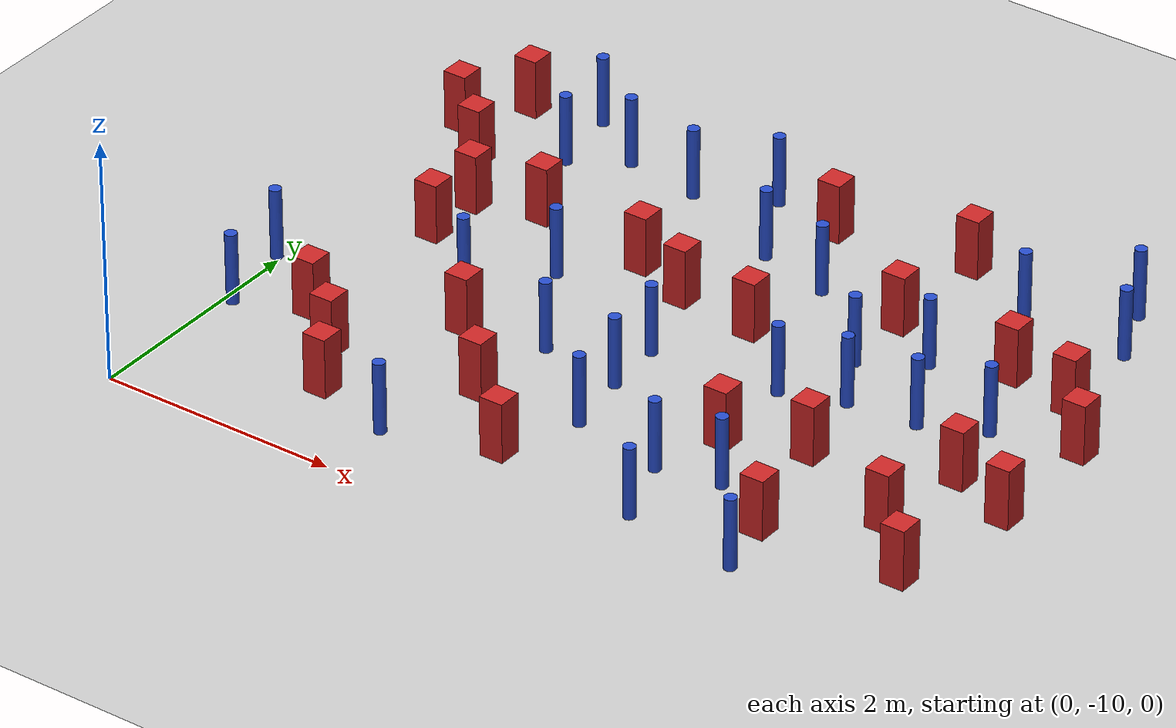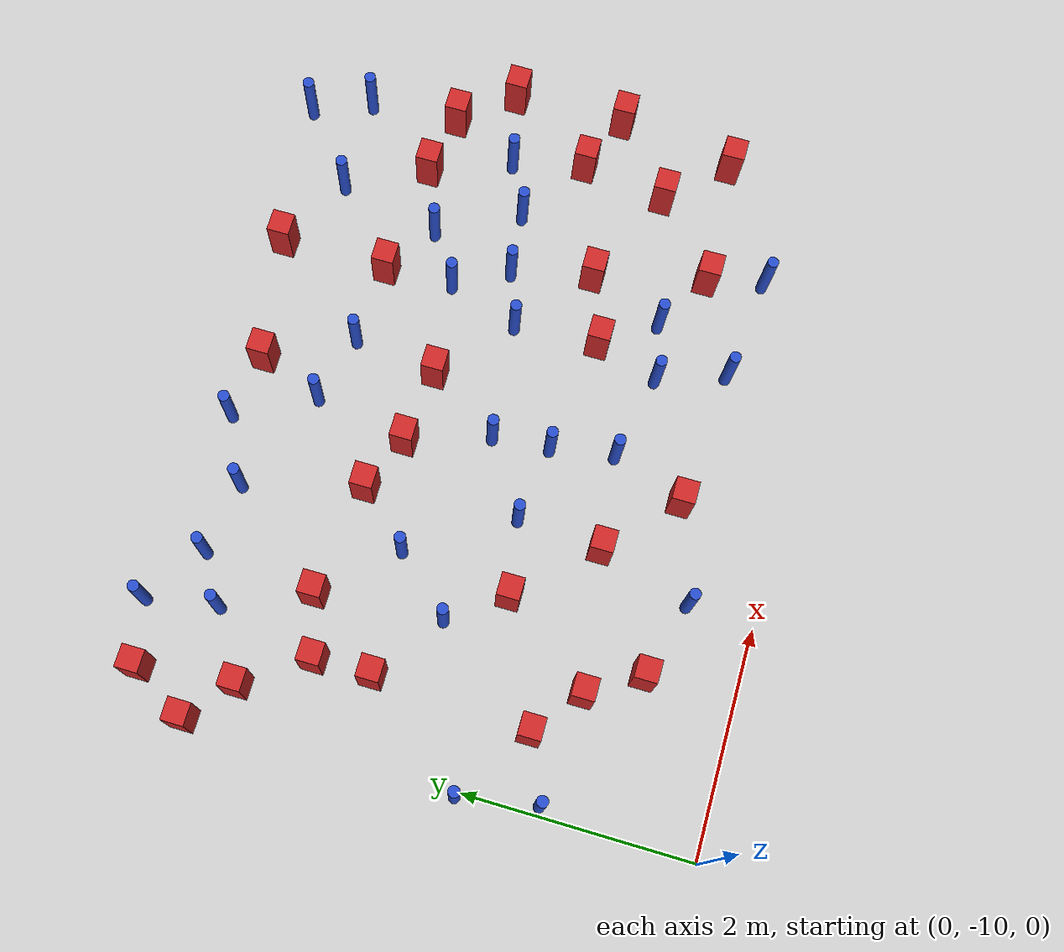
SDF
<sdf version="1.6">
 <world name="default">
  <model name="ground_plane">
   <static>1</static>
   <link name="link">
    <collision name="collision">
     <geometry><plane><normal>0 0 1</normal><size>100 100</size></plane></geometry>
     <surface><friction><ode><mu>100</mu><mu2>50</mu2></ode></friction></surface>
    </collision>
    <visual name="visual">
     <cast_shadows>0</cast_shadows>
     <geometry><plane><normal>0 0 1</normal><size>100 100</size></plane></geometry>
     <material>
      <ambient>1.0 1.0 1.0 1.0</ambient>
      <diffuse>0.8 0.8 0.8 1.0</diffuse>
      <specular>0.01 0.01 0.01 1.000000</specular>
     </material>
    </visual>
   </link>
  </model>
  <model name="square_post_obstacle0">
   <static>true</static>
   <pose>0.239393074724 -5.11633547202 1.91545236811e-07 -7.35059704564e-06 1.12565212e-07 2.39332434364e-05</pose>
   <link name="link">
    <pose>0 0 0.25 0 -0 0</pose>
    <inertial>
     <mass>100</mass>
     <inertia>
      <ixx>0.166667</ixx>
      <ixy>0</ixy>
      <ixz>0</ixz>
      <iyy>0.166667</iyy>
      <iyz>0</iyz>
      <izz>0.166667</izz>
     </inertia>
    </inertial>
    <collision name="collision"><geometry><box><size>.2 .2 .5</size></box></geometry></collision>
    <visual name="visual">
     <geometry><box><size>.2 .2 .5</size></box></geometry>
     <material>
      <script><name>Gazebo/Red</name><uri>file://media/materials/scripts/gazebo.material</uri></script>
     </material>
    </visual>
   </link>
  </model>
  <model name="square_post_obstacle14">
   <static>true</static>
   <pose>5.66452522465 -8.27704746896 1.91545236811e-07 -7.35059704564e-06 1.12565212e-07 2.39332434364e-05</pose>
   <link name="link">
    <pose>0 0 0.25 0 -0 0</pose>
    <inertial>
     <mass>100</mass>
     <inertia>
      <ixx>0.166667</ixx>
      <ixy>0</ixy>
      <ixz>0</ixz>
      <iyy>0.166667</iyy>
      <iyz>0</iyz>
      <izz>0.166667</izz>
     </inertia>
    </inertial>
    <collision name="collision"><geometry><box><size>.2 .2 .5</size></box></geometry></collision>
    <visual name="visual">
     <geometry><box><size>.2 .2 .5</size></box></geometry>
     <material>
      <script><name>Gazebo/Red</name><uri>file://media/materials/scripts/gazebo.material</uri></script>
     </material>
    </visual>
   </link>
  </model>
  <model name="square_post_obstacle16">
   <static>true</static>
   <pose>5.34431540036 -6.13683487316 1.91545236811e-07 -7.35059704564e-06 1.12565212e-07 2.39332434364e-05</pose>
   <link name="link">
    <pose>0 0 0.25 0 -0 0</pose>
    <inertial>
     <mass>100</mass>
     <inertia>
      <ixx>0.166667</ixx>
      <ixy>0</ixy>
      <ixz>0</ixz>
      <iyy>0.166667</iyy>
      <iyz>0</iyz>
      <izz>0.166667</izz>
     </inertia>
    </inertial>
    <collision name="collision"><geometry><box><size>.2 .2 .5</size></box></geometry></collision>
    <visual name="visual">
     <geometry><box><size>.2 .2 .5</size></box></geometry>
     <material>
      <script><name>Gazebo/Red</name><uri>file://media/materials/scripts/gazebo.material</uri></script>
     </material>
    </visual>
   </link>
  </model>
  <model name="square_post_obstacle20">
   <static>true</static>
   <pose>4.28876861676 -5.07236767864 1.91545236811e-07 -7.35059704564e-06 1.12565212e-07 2.39332434364e-05</pose>
   <link name="link">
    <pose>0 0 0.25 0 -0 0</pose>
    <inertial>
     <mass>100</mass>
     <inertia>
      <ixx>0.166667</ixx>
      <ixy>0</ixy>
      <ixz>0</ixz>
      <iyy>0.166667</iyy>
      <iyz>0</iyz>
      <izz>0.166667</izz>
     </inertia>
    </inertial>
    <collision name="collision"><geometry><box><size>.2 .2 .5</size></box></geometry></collision>
    <visual name="visual">
     <geometry><box><size>.2 .2 .5</size></box></geometry>
     <material>
      <script><name>Gazebo/Red</name><uri>file://media/materials/scripts/gazebo.material</uri></script>
     </material>
    </visual>
   </link>
  </model>
  <model name="square_post_obstacle23">
   <static>true</static>
   <pose>2.76238169437 -6.67858304899 1.91545236811e-07 -7.35059704564e-06 1.12565212e-07 2.39332434364e-05</pose>
   <link name="link">
    <pose>0 0 0.25 0 -0 0</pose>
    <inertial>
     <mass>100</mass>
     <inertia>
      <ixx>0.166667</ixx>
      <ixy>0</ixy>
      <ixz>0</ixz>
      <iyy>0.166667</iyy>
      <iyz>0</iyz>
      <izz>0.166667</izz>
     </inertia>
    </inertial>
    <collision name="collision"><geometry><box><size>.2 .2 .5</size></box></geometry></collision>
    <visual name="visual">
     <geometry><box><size>.2 .2 .5</size></box></geometry>
     <material>
      <script><name>Gazebo/Red</name><uri>file://media/materials/scripts/gazebo.material</uri></script>
     </material>
    </visual>
   </link>
  </model>
  <model name="square_post_obstacle26">
   <static>true</static>
   <pose>0.329745732735 -5.9619223979 1.91545236811e-07 -7.35059704564e-06 1.12565212e-07 2.39332434364e-05</pose>
   <link name="link">
    <pose>0 0 0.25 0 -0 0</pose>
    <inertial>
     <mass>100</mass>
     <inertia>
      <ixx>0.166667</ixx>
      <ixy>0</ixy>
      <ixz>0</ixz>
      <iyy>0.166667</iyy>
      <iyz>0</iyz>
      <izz>0.166667</izz>
     </inertia>
    </inertial>
    <collision name="collision"><geometry><box><size>.2 .2 .5</size></box></geometry></collision>
    <visual name="visual">
     <geometry><box><size>.2 .2 .5</size></box></geometry>
     <material>
      <script><name>Gazebo/Red</name><uri>file://media/materials/scripts/gazebo.material</uri></script>
     </material>
    </visual>
   </link>
  </model>
  <model name="square_post_obstacle37">
   <static>true</static>
   <pose>1.68894764603 -7.93559085688 1.91545236811e-07 -7.35059704564e-06 1.12565212e-07 2.39332434364e-05</pose>
   <link name="link">
    <pose>0 0 0.25 0 -0 0</pose>
    <inertial>
     <mass>100</mass>
     <inertia>
      <ixx>0.166667</ixx>
      <ixy>0</ixy>
      <ixz>0</ixz>
      <iyy>0.166667</iyy>
      <iyz>0</iyz>
      <izz>0.166667</izz>
     </inertia>
    </inertial>
    <collision name="collision"><geometry><box><size>.2 .2 .5</size></box></geometry></collision>
    <visual name="visual">
     <geometry><box><size>.2 .2 .5</size></box></geometry>
     <material>
      <script><name>Gazebo/Red</name><uri>file://media/materials/scripts/gazebo.material</uri></script>
     </material>
    </visual>
   </link>
  </model>
  <model name="square_post_obstacle39">
   <static>true</static>
   <pose>4.73304605116 -7.85816583785 1.91545236811e-07 -7.35059704564e-06 1.12565212e-07 2.39332434364e-05</pose>
   <link name="link">
    <pose>0 0 0.25 0 -0 0</pose>
    <inertial>
     <mass>100</mass>
     <inertia>
      <ixx>0.166667</ixx>
      <ixy>0</ixy>
      <ixz>0</ixz>
      <iyy>0.166667</iyy>
      <iyz>0</iyz>
      <izz>0.166667</izz>
     </inertia>
    </inertial>
    <collision name="collision"><geometry><box><size>.2 .2 .5</size></box></geometry></collision>
    <visual name="visual">
     <geometry><box><size>.2 .2 .5</size></box></geometry>
     <material>
      <script><name>Gazebo/Red</name><uri>file://media/materials/scripts/gazebo.material</uri></script>
     </material>
    </visual>
   </link>
  </model>
  <model name="pole_obstacle39">
   <static>true</static>
   <pose>2.92677198568 -5.82771786605 7.38925637345e-09 -8.47170692798e-08 1.24976765033e-08 -1.74513093019e-07</pose>
   <link name="link">
    <pose>0 0 0.3 0 -0 0</pose>
    <inertial>
     <mass>1</mass>
     <inertia><ixx>0.145833</ixx><ixy>0</ixy><ixz>0</ixz><iyy>0.145833</iyy><iyz>0</iyz><izz>0.125</izz></inertia>
    </inertial>
    <collision name="collision">
     <geometry><cylinder><radius>0.05</radius><length>.6</length></cylinder></geometry>
    </collision>
    <visual name="visual">
     <geometry><cylinder><radius>0.05</radius><length>.6</length></cylinder></geometry>
     <material>
      <script><name>Gazebo/Blue</name><uri>file://media/materials/scripts/gazebo.material</uri></script>
     </material>
    </visual>
   </link>
  </model>
  <model name="square_post_obstacle51">
   <static>true</static>
   <pose>0.717684950213 -7.01948713616 1.91545236811e-07 -7.35059704564e-06 1.12565212e-07 2.39332434364e-05</pose>
   <link name="link">
    <pose>0 0 0.25 0 -0 0</pose>
    <inertial>
     <mass>100</mass>
     <inertia>
      <ixx>0.166667</ixx>
      <ixy>0</ixy>
      <ixz>0</ixz>
      <iyy>0.166667</iyy>
      <iyz>0</iyz>
      <izz>0.166667</izz>
     </inertia>
    </inertial>
    <collision name="collision"><geometry><box><size>.2 .2 .5</size></box></geometry></collision>
    <visual name="visual">
     <geometry><box><size>.2 .2 .5</size></box></geometry>
     <material>
      <script><name>Gazebo/Red</name><uri>file://media/materials/scripts/gazebo.material</uri></script>
     </material>
    </visual>
   </link>
  </model>
  <model name="square_post_obstacle54">
   <static>true</static>
   <pose>4.98598468696 -8.85476415405 1.91545236811e-07 -7.35059704564e-06 1.12565212e-07 2.39332434364e-05</pose>
   <link name="link">
    <pose>0 0 0.25 0 -0 0</pose>
    <inertial>
     <mass>100</mass>
     <inertia>
      <ixx>0.166667</ixx>
      <ixy>0</ixy>
      <ixz>0</ixz>
      <iyy>0.166667</iyy>
      <iyz>0</iyz>
      <izz>0.166667</izz>
     </inertia>
    </inertial>
    <collision name="collision"><geometry><box><size>.2 .2 .5</size></box></geometry></collision>
    <visual name="visual">
     <geometry><box><size>.2 .2 .5</size></box></geometry>
     <material>
      <script><name>Gazebo/Red</name><uri>file://media/materials/scripts/gazebo.material</uri></script>
     </material>
    </visual>
   </link>
  </model>
  <model name="square_post_obstacle56">
   <static>true</static>
   <pose>0.635655862235 -8.41305819245 1.91545236811e-07 -7.35059704564e-06 1.12565212e-07 2.39332434364e-05</pose>
   <link name="link">
    <pose>0 0 0.25 0 -0 0</pose>
    <inertial>
     <mass>100</mass>
     <inertia>
      <ixx>0.166667</ixx>
      <ixy>0</ixy>
      <ixz>0</ixz>
      <iyy>0.166667</iyy>
      <iyz>0</iyz>
      <izz>0.166667</izz>
     </inertia>
    </inertial>
    <collision name="collision"><geometry><box><size>.2 .2 .5</size></box></geometry></collision>
    <visual name="visual">
     <geometry><box><size>.2 .2 .5</size></box></geometry>
     <material>
      <script><name>Gazebo/Red</name><uri>file://media/materials/scripts/gazebo.material</uri></script>
     </material>
    </visual>
   </link>
  </model>
  <model name="pole_obstacle54">
   <static>true</static>
   <pose>2.35396490443 -7.82283693971 7.38925637345e-09 -8.47170692798e-08 1.24976765033e-08 -1.74513093019e-07</pose>
   <link name="link">
    <pose>0 0 0.3 0 -0 0</pose>
    <inertial>
     <mass>1</mass>
     <inertia><ixx>0.145833</ixx><ixy>0</ixy><ixz>0</ixz><iyy>0.145833</iyy><iyz>0</iyz><izz>0.125</izz></inertia>
    </inertial>
    <collision name="collision">
     <geometry><cylinder><radius>0.05</radius><length>.6</length></cylinder></geometry>
    </collision>
    <visual name="visual">
     <geometry><cylinder><radius>0.05</radius><length>.6</length></cylinder></geometry>
     <material>
      <script><name>Gazebo/Blue</name><uri>file://media/materials/scripts/gazebo.material</uri></script>
     </material>
    </visual>
   </link>
  </model>
  <model name="pole_obstacle62">
   <static>true</static>
   <pose>2.56688256661 -5.14115055759 7.38925637345e-09 -8.47170692798e-08 1.24976765033e-08 -1.74513093019e-07</pose>
   <link name="link">
    <pose>0 0 0.3 0 -0 0</pose>
    <inertial>
     <mass>1</mass>
     <inertia><ixx>0.145833</ixx><ixy>0</ixy><ixz>0</ixz><iyy>0.145833</iyy><iyz>0</iyz><izz>0.125</izz></inertia>
    </inertial>
    <collision name="collision">
     <geometry><cylinder><radius>0.05</radius><length>.6</length></cylinder></geometry>
    </collision>
    <visual name="visual">
     <geometry><cylinder><radius>0.05</radius><length>.6</length></cylinder></geometry>
     <material>
      <script><name>Gazebo/Blue</name><uri>file://media/materials/scripts/gazebo.material</uri></script>
     </material>
    </visual>
   </link>
  </model>
  <model name="pole_obstacle74">
   <static>true</static>
   <pose>5.85127787623 -5.42313465242 7.38925637345e-09 -8.47170692796e-08 1.24976764786e-08 -1.74513093032e-07</pose>
   <link name="link">
    <pose>0 0 0.3 0 -0 0</pose>
    <inertial>
     <mass>1</mass>
     <inertia><ixx>0.145833</ixx><ixy>0</ixy><ixz>0</ixz><iyy>0.145833</iyy><iyz>0</iyz><izz>0.125</izz></inertia>
    </inertial>
    <collision name="collision">
     <geometry><cylinder><radius>0.05</radius><length>.6</length></cylinder></geometry>
    </collision>
    <visual name="visual">
     <geometry><cylinder><radius>0.05</radius><length>.6</length></cylinder></geometry>
     <material>
      <script><name>Gazebo/Blue</name><uri>file://media/materials/scripts/gazebo.material</uri></script>
     </material>
    </visual>
   </link>
  </model>
  <model name="pole_obstacle77">
   <static>true</static>
   <pose>4.13768257444 -9.24695120705 7.38925637345e-09 -8.471706928e-08 1.24976765081e-08 -1.74513093015e-07</pose>
   <link name="link">
    <pose>0 0 0.3 0 -0 0</pose>
    <inertial>
     <mass>1</mass>
     <inertia><ixx>0.145833</ixx><ixy>0</ixy><ixz>0</ixz><iyy>0.145833</iyy><iyz>0</iyz><izz>0.125</izz></inertia>
    </inertial>
    <collision name="collision">
     <geometry><cylinder><radius>0.05</radius><length>.6</length></cylinder></geometry>
    </collision>
    <visual name="visual">
     <geometry><cylinder><radius>0.05</radius><length>.6</length></cylinder></geometry>
     <material>
      <script><name>Gazebo/Blue</name><uri>file://media/materials/scripts/gazebo.material</uri></script>
     </material>
    </visual>
   </link>
  </model>
  <model name="square_post_obstacle79">
   <static>true</static>
   <pose>3.44021752838 -6.75589412791 1.91545236811e-07 -7.35059704564e-06 1.12565212e-07 2.39332434364e-05</pose>
   <link name="link">
    <pose>0 0 0.25 0 -0 0</pose>
    <inertial>
     <mass>100</mass>
     <inertia>
      <ixx>0.166667</ixx>
      <ixy>0</ixy>
      <ixz>0</ixz>
      <iyy>0.166667</iyy>
      <iyz>0</iyz>
      <izz>0.166667</izz>
     </inertia>
    </inertial>
    <collision name="collision"><geometry><box><size>.2 .2 .5</size></box></geometry></collision>
    <visual name="visual">
     <geometry><box><size>.2 .2 .5</size></box></geometry>
     <material>
      <script><name>Gazebo/Red</name><uri>file://media/materials/scripts/gazebo.material</uri></script>
     </material>
    </visual>
   </link>
  </model>
  <model name="pole_obstacle95">
   <static>true</static>
   <pose>0.799604997035 -4.96641036493 7.38925637345e-09 -8.471706928e-08 1.24976765086e-08 -1.74513093015e-07</pose>
   <link name="link">
    <pose>0 0 0.3 0 -0 0</pose>
    <inertial>
     <mass>1</mass>
     <inertia><ixx>0.145833</ixx><ixy>0</ixy><ixz>0</ixz><iyy>0.145833</iyy><iyz>0</iyz><izz>0.125</izz></inertia>
    </inertial>
    <collision name="collision">
     <geometry><cylinder><radius>0.05</radius><length>.6</length></cylinder></geometry>
    </collision>
    <visual name="visual">
     <geometry><cylinder><radius>0.05</radius><length>.6</length></cylinder></geometry>
     <material>
      <script><name>Gazebo/Blue</name><uri>file://media/materials/scripts/gazebo.material</uri></script>
     </material>
    </visual>
   </link>
  </model>
  <model name="square_post_obstacle84">
   <static>true</static>
   <pose>6.3213210823 -7.72801168453 1.91545236811e-07 -7.35059704564e-06 1.12565212e-07 2.39332434364e-05</pose>
   <link name="link">
    <pose>0 0 0.25 0 -0 0</pose>
    <inertial>
     <mass>100</mass>
     <inertia>
      <ixx>0.166667</ixx>
      <ixy>0</ixy>
      <ixz>0</ixz>
      <iyy>0.166667</iyy>
      <iyz>0</iyz>
      <izz>0.166667</izz>
     </inertia>
    </inertial>
    <collision name="collision"><geometry><box><size>.2 .2 .5</size></box></geometry></collision>
    <visual name="visual">
     <geometry><box><size>.2 .2 .5</size></box></geometry>
     <material>
      <script><name>Gazebo/Red</name><uri>file://media/materials/scripts/gazebo.material</uri></script>
     </material>
    </visual>
   </link>
  </model>
  <model name="pole_obstacle101">
   <static>true</static>
   <pose>1.32940897357 -5.3309616093 7.38925637345e-09 -8.47170692799e-08 1.24976765033e-08 -1.74513093018e-07</pose>
   <link name="link">
    <pose>0 0 0.3 0 -0 0</pose>
    <inertial>
     <mass>1</mass>
     <inertia><ixx>0.145833</ixx><ixy>0</ixy><ixz>0</ixz><iyy>0.145833</iyy><iyz>0</iyz><izz>0.125</izz></inertia>
    </inertial>
    <collision name="collision">
     <geometry><cylinder><radius>0.05</radius><length>.6</length></cylinder></geometry>
    </collision>
    <visual name="visual">
     <geometry><cylinder><radius>0.05</radius><length>.6</length></cylinder></geometry>
     <material>
      <script><name>Gazebo/Blue</name><uri>file://media/materials/scripts/gazebo.material</uri></script>
     </material>
    </visual>
   </link>
  </model>
  <model name="square_post_obstacle96">
   <static>true</static>
   <pose>6.30016649651 -6.71195299548 1.91545236811e-07 -7.35059704564e-06 1.12565212e-07 2.39332434364e-05</pose>
   <link name="link">
    <pose>0 0 0.25 0 -0 0</pose>
    <inertial>
     <mass>100</mass>
     <inertia>
      <ixx>0.166667</ixx>
      <ixy>0</ixy>
      <ixz>0</ixz>
      <iyy>0.166667</iyy>
      <iyz>0</iyz>
      <izz>0.166667</izz>
     </inertia>
    </inertial>
    <collision name="collision"><geometry><box><size>.2 .2 .5</size></box></geometry></collision>
    <visual name="visual">
     <geometry><box><size>.2 .2 .5</size></box></geometry>
     <material>
      <script><name>Gazebo/Red</name><uri>file://media/materials/scripts/gazebo.material</uri></script>
     </material>
    </visual>
   </link>
  </model>
  <model name="pole_obstacle109">
   <static>true</static>
   <pose>0.904961564796 -5.59777344753 7.38925637345e-09 -8.471706928e-08 1.24976765086e-08 -1.74513093015e-07</pose>
   <link name="link">
    <pose>0 0 0.3 0 -0 0</pose>
    <inertial>
     <mass>1</mass>
     <inertia><ixx>0.145833</ixx><ixy>0</ixy><ixz>0</ixz><iyy>0.145833</iyy><iyz>0</iyz><izz>0.125</izz></inertia>
    </inertial>
    <collision name="collision">
     <geometry><cylinder><radius>0.05</radius><length>.6</length></cylinder></geometry>
    </collision>
    <visual name="visual">
     <geometry><cylinder><radius>0.05</radius><length>.6</length></cylinder></geometry>
     <material>
      <script><name>Gazebo/Blue</name><uri>file://media/materials/scripts/gazebo.material</uri></script>
     </material>
    </visual>
   </link>
  </model>
  <model name="pole_obstacle110">
   <static>true</static>
   <pose>-0.0454354200356 -7.95750425219 7.38925637345e-09 -8.47170692798e-08 1.24976764949e-08 -1.74513093023e-07</pose>
   <link name="link">
    <pose>0 0 0.3 0 -0 0</pose>
    <inertial>
     <mass>1</mass>
     <inertia><ixx>0.145833</ixx><ixy>0</ixy><ixz>0</ixz><iyy>0.145833</iyy><iyz>0</iyz><izz>0.125</izz></inertia>
    </inertial>
    <collision name="collision">
     <geometry><cylinder><radius>0.05</radius><length>.6</length></cylinder></geometry>
    </collision>
    <visual name="visual">
     <geometry><cylinder><radius>0.05</radius><length>.6</length></cylinder></geometry>
     <material>
      <script><name>Gazebo/Blue</name><uri>file://media/materials/scripts/gazebo.material</uri></script>
     </material>
    </visual>
   </link>
  </model>
  <model name="pole_obstacle119">
   <static>true</static>
   <pose>1.32913389827 -7.45550906816 7.38925637345e-09 -8.47170692799e-08 1.24976765033e-08 -1.74513093018e-07</pose>
   <link name="link">
    <pose>0 0 0.3 0 -0 0</pose>
    <inertial>
     <mass>1</mass>
     <inertia><ixx>0.145833</ixx><ixy>0</ixy><ixz>0</ixz><iyy>0.145833</iyy><iyz>0</iyz><izz>0.125</izz></inertia>
    </inertial>
    <collision name="collision">
     <geometry><cylinder><radius>0.05</radius><length>.6</length></cylinder></geometry>
    </collision>
    <visual name="visual">
     <geometry><cylinder><radius>0.05</radius><length>.6</length></cylinder></geometry>
     <material>
      <script><name>Gazebo/Blue</name><uri>file://media/materials/scripts/gazebo.material</uri></script>
     </material>
    </visual>
   </link>
  </model>
  <model name="pole_obstacle124">
   <static>true</static>
   <pose>4.29735005299 -6.65630802097 7.38925637345e-09 -8.47170692796e-08 1.24976764786e-08 -1.74513093032e-07</pose>
   <link name="link">
    <pose>0 0 0.3 0 -0 0</pose>
    <inertial>
     <mass>1</mass>
     <inertia><ixx>0.145833</ixx><ixy>0</ixy><ixz>0</ixz><iyy>0.145833</iyy><iyz>0</iyz><izz>0.125</izz></inertia>
    </inertial>
    <collision name="collision">
     <geometry><cylinder><radius>0.05</radius><length>.6</length></cylinder></geometry>
    </collision>
    <visual name="visual">
     <geometry><cylinder><radius>0.05</radius><length>.6</length></cylinder></geometry>
     <material>
      <script><name>Gazebo/Blue</name><uri>file://media/materials/scripts/gazebo.material</uri></script>
     </material>
    </visual>
   </link>
  </model>
  <model name="pole_obstacle125">
   <static>true</static>
   <pose>4.06969225476 -7.3075442363 7.38925637345e-09 -8.47170692796e-08 1.24976764786e-08 -1.74513093032e-07</pose>
   <link name="link">
    <pose>0 0 0.3 0 -0 0</pose>
    <inertial>
     <mass>1</mass>
     <inertia><ixx>0.145833</ixx><ixy>0</ixy><ixz>0</ixz><iyy>0.145833</iyy><iyz>0</iyz><izz>0.125</izz></inertia>
    </inertial>
    <collision name="collision">
     <geometry><cylinder><radius>0.05</radius><length>.6</length></cylinder></geometry>
    </collision>
    <visual name="visual">
     <geometry><cylinder><radius>0.05</radius><length>.6</length></cylinder></geometry>
     <material>
      <script><name>Gazebo/Blue</name><uri>file://media/materials/scripts/gazebo.material</uri></script>
     </material>
    </visual>
   </link>
  </model>
  <model name="pole_obstacle127">
   <static>true</static>
   <pose>1.97741929509 -5.42981381144 7.38925637345e-09 -8.471706928e-08 1.24976765202e-08 -1.7451309301e-07</pose>
   <link name="link">
    <pose>0 0 0.3 0 -0 0</pose>
    <inertial>
     <mass>1</mass>
     <inertia><ixx>0.145833</ixx><ixy>0</ixy><ixz>0</ixz><iyy>0.145833</iyy><iyz>0</iyz><izz>0.125</izz></inertia>
    </inertial>
    <collision name="collision">
     <geometry><cylinder><radius>0.05</radius><length>.6</length></cylinder></geometry>
    </collision>
    <visual name="visual">
     <geometry><cylinder><radius>0.05</radius><length>.6</length></cylinder></geometry>
     <material>
      <script><name>Gazebo/Blue</name><uri>file://media/materials/scripts/gazebo.material</uri></script>
     </material>
    </visual>
   </link>
  </model>
  <model name="pole_obstacle131">
   <static>true</static>
   <pose>1.80621546105 -6.94480413785 7.38925637345e-09 -8.47170692799e-08 1.24976765033e-08 -1.74513093018e-07</pose>
   <link name="link">
    <pose>0 0 0.3 0 -0 0</pose>
    <inertial>
     <mass>1</mass>
     <inertia><ixx>0.145833</ixx><ixy>0</ixy><ixz>0</ixz><iyy>0.145833</iyy><iyz>0</iyz><izz>0.125</izz></inertia>
    </inertial>
    <collision name="collision">
     <geometry><cylinder><radius>0.05</radius><length>.6</length></cylinder></geometry>
    </collision>
    <visual name="visual">
     <geometry><cylinder><radius>0.05</radius><length>.6</length></cylinder></geometry>
     <material>
      <script><name>Gazebo/Blue</name><uri>file://media/materials/scripts/gazebo.material</uri></script>
     </material>
    </visual>
   </link>
  </model>
  <model name="square_post_obstacle115">
   <static>true</static>
   <pose>-0.0606338507477 -5.61938124538 1.91545236811e-07 -7.35059704564e-06 1.12565212e-07 2.39332434364e-05</pose>
   <link name="link">
    <pose>0 0 0.25 0 -0 0</pose>
    <inertial>
     <mass>100</mass>
     <inertia>
      <ixx>0.166667</ixx>
      <ixy>0</ixy>
      <ixz>0</ixz>
      <iyy>0.166667</iyy>
      <iyz>0</iyz>
      <izz>0.166667</izz>
     </inertia>
    </inertial>
    <collision name="collision"><geometry><box><size>.2 .2 .5</size></box></geometry></collision>
    <visual name="visual">
     <geometry><box><size>.2 .2 .5</size></box></geometry>
     <material>
      <script><name>Gazebo/Red</name><uri>file://media/materials/scripts/gazebo.material</uri></script>
     </material>
    </visual>
   </link>
  </model>
  <model name="pole_obstacle135">
   <static>true</static>
   <pose>5.62189481558 -6.85552843043 7.38925637345e-09 -8.47170692796e-08 1.24976764786e-08 -1.74513093032e-07</pose>
   <link name="link">
    <pose>0 0 0.3 0 -0 0</pose>
    <inertial>
     <mass>1</mass>
     <inertia><ixx>0.145833</ixx><ixy>0</ixy><ixz>0</ixz><iyy>0.145833</iyy><iyz>0</iyz><izz>0.125</izz></inertia>
    </inertial>
    <collision name="collision">
     <geometry><cylinder><radius>0.05</radius><length>.6</length></cylinder></geometry>
    </collision>
    <visual name="visual">
     <geometry><cylinder><radius>0.05</radius><length>.6</length></cylinder></geometry>
     <material>
      <script><name>Gazebo/Blue</name><uri>file://media/materials/scripts/gazebo.material</uri></script>
     </material>
    </visual>
   </link>
  </model>
  <model name="square_post_obstacle117">
   <static>true</static>
   <pose>2.89743256136 -9.1306946407 1.91545236811e-07 -7.35059704564e-06 1.12565212e-07 2.39332434364e-05</pose>
   <link name="link">
    <pose>0 0 0.25 0 -0 0</pose>
    <inertial>
     <mass>100</mass>
     <inertia>
      <ixx>0.166667</ixx>
      <ixy>0</ixy>
      <ixz>0</ixz>
      <iyy>0.166667</iyy>
      <iyz>0</iyz>
      <izz>0.166667</izz>
     </inertia>
    </inertial>
    <collision name="collision"><geometry><box><size>.2 .2 .5</size></box></geometry></collision>
    <visual name="visual">
     <geometry><box><size>.2 .2 .5</size></box></geometry>
     <material>
      <script><name>Gazebo/Red</name><uri>file://media/materials/scripts/gazebo.material</uri></script>
     </material>
    </visual>
   </link>
  </model>
  <model name="pole_obstacle144">
   <static>true</static>
   <pose>4.9732142126 -5.42686539209 7.38925637345e-09 -8.47170692796e-08 1.24976764786e-08 -1.74513093032e-07</pose>
   <link name="link">
    <pose>0 0 0.3 0 -0 0</pose>
    <inertial>
     <mass>1</mass>
     <inertia><ixx>0.145833</ixx><ixy>0</ixy><ixz>0</ixz><iyy>0.145833</iyy><iyz>0</iyz><izz>0.125</izz></inertia>
    </inertial>
    <collision name="collision">
     <geometry><cylinder><radius>0.05</radius><length>.6</length></cylinder></geometry>
    </collision>
    <visual name="visual">
     <geometry><cylinder><radius>0.05</radius><length>.6</length></cylinder></geometry>
     <material>
      <script><name>Gazebo/Blue</name><uri>file://media/materials/scripts/gazebo.material</uri></script>
     </material>
    </visual>
   </link>
  </model>
  <model name="square_post_obstacle137">
   <static>true</static>
   <pose>4.28400126058 -6.04372200189 1.91545236811e-07 -7.35059704564e-06 1.12565212e-07 2.39332434364e-05</pose>
   <link name="link">
    <pose>0 0 0.25 0 -0 0</pose>
    <inertial>
     <mass>100</mass>
     <inertia>
      <ixx>0.166667</ixx>
      <ixy>0</ixy>
      <ixz>0</ixz>
      <iyy>0.166667</iyy>
      <iyz>0</iyz>
      <izz>0.166667</izz>
     </inertia>
    </inertial>
    <collision name="collision"><geometry><box><size>.2 .2 .5</size></box></geometry></collision>
    <visual name="visual">
     <geometry><box><size>.2 .2 .5</size></box></geometry>
     <material>
      <script><name>Gazebo/Red</name><uri>file://media/materials/scripts/gazebo.material</uri></script>
     </material>
    </visual>
   </link>
  </model>
  <model name="pole_obstacle153">
   <static>true</static>
   <pose>5.13710028056 -7.08158918405 7.38925637345e-09 -8.47170692796e-08 1.24976764786e-08 -1.74513093032e-07</pose>
   <link name="link">
    <pose>0 0 0.3 0 -0 0</pose>
    <inertial>
     <mass>1</mass>
     <inertia><ixx>0.145833</ixx><ixy>0</ixy><ixz>0</ixz><iyy>0.145833</iyy><iyz>0</iyz><izz>0.125</izz></inertia>
    </inertial>
    <collision name="collision">
     <geometry><cylinder><radius>0.05</radius><length>.6</length></cylinder></geometry>
    </collision>
    <visual name="visual">
     <geometry><cylinder><radius>0.05</radius><length>.6</length></cylinder></geometry>
     <material>
      <script><name>Gazebo/Blue</name><uri>file://media/materials/scripts/gazebo.material</uri></script>
     </material>
    </visual>
   </link>
  </model>
  <model name="pole_obstacle157">
   <static>true</static>
   <pose>3.5460571842 -5.98829097805 7.38925637345e-09 -8.47170692798e-08 1.24976765033e-08 -1.74513093019e-07</pose>
   <link name="link">
    <pose>0 0 0.3 0 -0 0</pose>
    <inertial>
     <mass>1</mass>
     <inertia><ixx>0.145833</ixx><ixy>0</ixy><ixz>0</ixz><iyy>0.145833</iyy><iyz>0</iyz><izz>0.125</izz></inertia>
    </inertial>
    <collision name="collision">
     <geometry><cylinder><radius>0.05</radius><length>.6</length></cylinder></geometry>
    </collision>
    <visual name="visual">
     <geometry><cylinder><radius>0.05</radius><length>.6</length></cylinder></geometry>
     <material>
      <script><name>Gazebo/Blue</name><uri>file://media/materials/scripts/gazebo.material</uri></script>
     </material>
    </visual>
   </link>
  </model>
  <model name="pole_obstacle163">
   <static>true</static>
   <pose>3.04568637812 -7.91744090723 7.38925637345e-09 -8.47170692798e-08 1.24976765033e-08 -1.74513093019e-07</pose>
   <link name="link">
    <pose>0 0 0.3 0 -0 0</pose>
    <inertial>
     <mass>1</mass>
     <inertia><ixx>0.145833</ixx><ixy>0</ixy><ixz>0</ixz><iyy>0.145833</iyy><iyz>0</iyz><izz>0.125</izz></inertia>
    </inertial>
    <collision name="collision">
     <geometry><cylinder><radius>0.05</radius><length>.6</length></cylinder></geometry>
    </collision>
    <visual name="visual">
     <geometry><cylinder><radius>0.05</radius><length>.6</length></cylinder></geometry>
     <material>
      <script><name>Gazebo/Blue</name><uri>file://media/materials/scripts/gazebo.material</uri></script>
     </material>
    </visual>
   </link>
  </model>
  <model name="pole_obstacle167">
   <static>true</static>
   <pose>5.09274615611 -9.35878205307 7.38925637345e-09 -8.471706928e-08 1.24976765081e-08 -1.74513093015e-07</pose>
   <link name="link">
    <pose>0 0 0.3 0 -0 0</pose>
    <inertial>
     <mass>1</mass>
     <inertia><ixx>0.145833</ixx><ixy>0</ixy><ixz>0</ixz><iyy>0.145833</iyy><iyz>0</iyz><izz>0.125</izz></inertia>
    </inertial>
    <collision name="collision">
     <geometry><cylinder><radius>0.05</radius><length>.6</length></cylinder></geometry>
    </collision>
    <visual name="visual">
     <geometry><cylinder><radius>0.05</radius><length>.6</length></cylinder></geometry>
     <material>
      <script><name>Gazebo/Blue</name><uri>file://media/materials/scripts/gazebo.material</uri></script>
     </material>
    </visual>
   </link>
  </model>
  <model name="square_post_obstacle163">
   <static>true</static>
   <pose>5.91190555562 -6.24289170551 1.91545236811e-07 -7.35059704564e-06 1.12565212e-07 2.39332434364e-05</pose>
   <link name="link">
    <pose>0 0 0.25 0 -0 0</pose>
    <inertial>
     <mass>100</mass>
     <inertia>
      <ixx>0.166667</ixx>
      <ixy>0</ixy>
      <ixz>0</ixz>
      <iyy>0.166667</iyy>
      <iyz>0</iyz>
      <izz>0.166667</izz>
     </inertia>
    </inertial>
    <collision name="collision"><geometry><box><size>.2 .2 .5</size></box></geometry></collision>
    <visual name="visual">
     <geometry><box><size>.2 .2 .5</size></box></geometry>
     <material>
      <script><name>Gazebo/Red</name><uri>file://media/materials/scripts/gazebo.material</uri></script>
     </material>
    </visual>
   </link>
  </model>
  <model name="square_post_obstacle165">
   <static>true</static>
   <pose>2.29766030723 -8.5771016648 1.91545236811e-07 -7.35059704564e-06 1.12565212e-07 2.39332434364e-05</pose>
   <link name="link">
    <pose>0 0 0.25 0 -0 0</pose>
    <inertial>
     <mass>100</mass>
     <inertia>
      <ixx>0.166667</ixx>
      <ixy>0</ixy>
      <ixz>0</ixz>
      <iyy>0.166667</iyy>
      <iyz>0</iyz>
      <izz>0.166667</izz>
     </inertia>
    </inertial>
    <collision name="collision"><geometry><box><size>.2 .2 .5</size></box></geometry></collision>
    <visual name="visual">
     <geometry><box><size>.2 .2 .5</size></box></geometry>
     <material>
      <script><name>Gazebo/Red</name><uri>file://media/materials/scripts/gazebo.material</uri></script>
     </material>
    </visual>
   </link>
  </model>
  <model name="square_post_obstacle168">
   <static>true</static>
   <pose>1.06175158246 -8.74593875624 1.91545236811e-07 -7.35059704564e-06 1.12565212e-07 2.39332434364e-05</pose>
   <link name="link">
    <pose>0 0 0.25 0 -0 0</pose>
    <inertial>
     <mass>100</mass>
     <inertia>
      <ixx>0.166667</ixx>
      <ixy>0</ixy>
      <ixz>0</ixz>
      <iyy>0.166667</iyy>
      <iyz>0</iyz>
      <izz>0.166667</izz>
     </inertia>
    </inertial>
    <collision name="collision"><geometry><box><size>.2 .2 .5</size></box></geometry></collision>
    <visual name="visual">
     <geometry><box><size>.2 .2 .5</size></box></geometry>
     <material>
      <script><name>Gazebo/Red</name><uri>file://media/materials/scripts/gazebo.material</uri></script>
     </material>
    </visual>
   </link>
  </model>
  <model name="square_post_obstacle170">
   <static>true</static>
   <pose>5.78461201968 -7.50682357128 1.91545236811e-07 -7.35059704564e-06 1.12565212e-07 2.39332434364e-05</pose>
   <link name="link">
    <pose>0 0 0.25 0 -0 0</pose>
    <inertial>
     <mass>100</mass>
     <inertia>
      <ixx>0.166667</ixx>
      <ixy>0</ixy>
      <ixz>0</ixz>
      <iyy>0.166667</iyy>
      <iyz>0</iyz>
      <izz>0.166667</izz>
     </inertia>
    </inertial>
    <collision name="collision"><geometry><box><size>.2 .2 .5</size></box></geometry></collision>
    <visual name="visual">
     <geometry><box><size>.2 .2 .5</size></box></geometry>
     <material>
      <script><name>Gazebo/Red</name><uri>file://media/materials/scripts/gazebo.material</uri></script>
     </material>
    </visual>
   </link>
  </model>
  <model name="square_post_obstacle175">
   <static>true</static>
   <pose>6.14679265799 -8.79247265597 1.91545236811e-07 -7.35059704564e-06 1.12565212e-07 2.39332434364e-05</pose>
   <link name="link">
    <pose>0 0 0.25 0 -0 0</pose>
    <inertial>
     <mass>100</mass>
     <inertia>
      <ixx>0.166667</ixx>
      <ixy>0</ixy>
      <ixz>0</ixz>
      <iyy>0.166667</iyy>
      <iyz>0</iyz>
      <izz>0.166667</izz>
     </inertia>
    </inertial>
    <collision name="collision"><geometry><box><size>.2 .2 .5</size></box></geometry></collision>
    <visual name="visual">
     <geometry><box><size>.2 .2 .5</size></box></geometry>
     <material>
      <script><name>Gazebo/Red</name><uri>file://media/materials/scripts/gazebo.material</uri></script>
     </material>
    </visual>
   </link>
  </model>
  <model name="square_post_obstacle177">
   <static>true</static>
   <pose>1.24857869306 -6.34442419791 1.91545236811e-07 -7.35059704564e-06 1.12565212e-07 2.39332434364e-05</pose>
   <link name="link">
    <pose>0 0 0.25 0 -0 0</pose>
    <inertial>
     <mass>100</mass>
     <inertia>
      <ixx>0.166667</ixx>
      <ixy>0</ixy>
      <ixz>0</ixz>
      <iyy>0.166667</iyy>
      <iyz>0</iyz>
      <izz>0.166667</izz>
     </inertia>
    </inertial>
    <collision name="collision"><geometry><box><size>.2 .2 .5</size></box></geometry></collision>
    <visual name="visual">
     <geometry><box><size>.2 .2 .5</size></box></geometry>
     <material>
      <script><name>Gazebo/Red</name><uri>file://media/materials/scripts/gazebo.material</uri></script>
     </material>
    </visual>
   </link>
  </model>
  <model name="square_post_obstacle200">
   <static>true</static>
   <pose>1.34806167452 -9.19912589169 1.91545236811e-07 -7.35059704564e-06 1.12565212e-07 2.39332434364e-05</pose>
   <link name="link">
    <pose>0 0 0.25 0 -0 0</pose>
    <inertial>
     <mass>100</mass>
     <inertia>
      <ixx>0.166667</ixx>
      <ixy>0</ixy>
      <ixz>0</ixz>
      <iyy>0.166667</iyy>
      <iyz>0</iyz>
      <izz>0.166667</izz>
     </inertia>
    </inertial>
    <collision name="collision"><geometry><box><size>.2 .2 .5</size></box></geometry></collision>
    <visual name="visual">
     <geometry><box><size>.2 .2 .5</size></box></geometry>
     <material>
      <script><name>Gazebo/Red</name><uri>file://media/materials/scripts/gazebo.material</uri></script>
     </material>
    </visual>
   </link>
  </model>
  <model name="square_post_obstacle201">
   <static>true</static>
   <pose>3.16434341222 -5.2565166522 1.91545236811e-07 -7.35059704564e-06 1.12565212e-07 2.39332434364e-05</pose>
   <link name="link">
    <pose>0 0 0.25 0 -0 0</pose>
    <inertial>
     <mass>100</mass>
     <inertia>
      <ixx>0.166667</ixx>
      <ixy>0</ixy>
      <ixz>0</ixz>
      <iyy>0.166667</iyy>
      <iyz>0</iyz>
      <izz>0.166667</izz>
     </inertia>
    </inertial>
    <collision name="collision"><geometry><box><size>.2 .2 .5</size></box></geometry></collision>
    <visual name="visual">
     <geometry><box><size>.2 .2 .5</size></box></geometry>
     <material>
      <script><name>Gazebo/Red</name><uri>file://media/materials/scripts/gazebo.material</uri></script>
     </material>
    </visual>
   </link>
  </model>
  <model name="square_post_obstacle202">
   <static>true</static>
   <pose>2.26152561792 -6.47880981098 1.91545236811e-07 -7.35059704564e-06 1.12565212e-07 2.39332434364e-05</pose>
   <link name="link">
    <pose>0 0 0.25 0 -0 0</pose>
    <inertial>
     <mass>100</mass>
     <inertia>
      <ixx>0.166667</ixx>
      <ixy>0</ixy>
      <ixz>0</ixz>
      <iyy>0.166667</iyy>
      <iyz>0</iyz>
      <izz>0.166667</izz>
     </inertia>
    </inertial>
    <collision name="collision"><geometry><box><size>.2 .2 .5</size></box></geometry></collision>
    <visual name="visual">
     <geometry><box><size>.2 .2 .5</size></box></geometry>
     <material>
      <script><name>Gazebo/Red</name><uri>file://media/materials/scripts/gazebo.material</uri></script>
     </material>
    </visual>
   </link>
  </model>
  <model name="pole_obstacle188">
   <static>true</static>
   <pose>4.56363416592 -7.13605485001 7.38925637345e-09 -8.47170692796e-08 1.24976764786e-08 -1.74513093032e-07</pose>
   <link name="link">
    <pose>0 0 0.3 0 -0 0</pose>
    <inertial>
     <mass>1</mass>
     <inertia><ixx>0.145833</ixx><ixy>0</ixy><ixz>0</ixz><iyy>0.145833</iyy><iyz>0</iyz><izz>0.125</izz></inertia>
    </inertial>
    <collision name="collision">
     <geometry><cylinder><radius>0.05</radius><length>.6</length></cylinder></geometry>
    </collision>
    <visual name="visual">
     <geometry><cylinder><radius>0.05</radius><length>.6</length></cylinder></geometry>
     <material>
      <script><name>Gazebo/Blue</name><uri>file://media/materials/scripts/gazebo.material</uri></script>
     </material>
    </visual>
   </link>
  </model>
  <model name="pole_obstacle189">
   <static>true</static>
   <pose>4.75750380925 -6.35898188618 7.38925637345e-09 -8.47170692796e-08 1.24976764786e-08 -1.74513093032e-07</pose>
   <link name="link">
    <pose>0 0 0.3 0 -0 0</pose>
    <inertial>
     <mass>1</mass>
     <inertia><ixx>0.145833</ixx><ixy>0</ixy><ixz>0</ixz><iyy>0.145833</iyy><iyz>0</iyz><izz>0.125</izz></inertia>
    </inertial>
    <collision name="collision">
     <geometry><cylinder><radius>0.05</radius><length>.6</length></cylinder></geometry>
    </collision>
    <visual name="visual">
     <geometry><cylinder><radius>0.05</radius><length>.6</length></cylinder></geometry>
     <material>
      <script><name>Gazebo/Blue</name><uri>file://media/materials/scripts/gazebo.material</uri></script>
     </material>
    </visual>
   </link>
  </model>
  <model name="pole_obstacle193">
   <static>true</static>
   <pose>3.14060338674 -8.48381251994 7.38925637345e-09 -8.47170692793e-08 1.24976764408e-08 -1.74513093041e-07</pose>
   <link name="link">
    <pose>0 0 0.3 0 -0 0</pose>
    <inertial>
     <mass>1</mass>
     <inertia><ixx>0.145833</ixx><ixy>0</ixy><ixz>0</ixz><iyy>0.145833</iyy><iyz>0</iyz><izz>0.125</izz></inertia>
    </inertial>
    <collision name="collision">
     <geometry><cylinder><radius>0.05</radius><length>.6</length></cylinder></geometry>
    </collision>
    <visual name="visual">
     <geometry><cylinder><radius>0.05</radius><length>.6</length></cylinder></geometry>
     <material>
      <script><name>Gazebo/Blue</name><uri>file://media/materials/scripts/gazebo.material</uri></script>
     </material>
    </visual>
   </link>
  </model>
  <model name="pole_obstacle194">
   <static>true</static>
   <pose>3.00689589126 -7.4056361834 7.38925637345e-09 -8.47170692798e-08 1.24976765033e-08 -1.74513093019e-07</pose>
   <link name="link">
    <pose>0 0 0.3 0 -0 0</pose>
    <inertial>
     <mass>1</mass>
     <inertia><ixx>0.145833</ixx><ixy>0</ixy><ixz>0</ixz><iyy>0.145833</iyy><iyz>0</iyz><izz>0.125</izz></inertia>
    </inertial>
    <collision name="collision">
     <geometry><cylinder><radius>0.05</radius><length>.6</length></cylinder></geometry>
    </collision>
    <visual name="visual">
     <geometry><cylinder><radius>0.05</radius><length>.6</length></cylinder></geometry>
     <material>
      <script><name>Gazebo/Blue</name><uri>file://media/materials/scripts/gazebo.material</uri></script>
     </material>
    </visual>
   </link>
  </model>
  <model name="square_post_obstacle206">
   <static>true</static>
   <pose>4.11672881709 -8.0709475394 1.91545236811e-07 -7.35059704564e-06 1.12565212e-07 2.39332434364e-05</pose>
   <link name="link">
    <pose>0 0 0.25 0 -0 0</pose>
    <inertial>
     <mass>100</mass>
     <inertia>
      <ixx>0.166667</ixx>
      <ixy>0</ixy>
      <ixz>0</ixz>
      <iyy>0.166667</iyy>
      <iyz>0</iyz>
      <izz>0.166667</izz>
     </inertia>
    </inertial>
    <collision name="collision"><geometry><box><size>.2 .2 .5</size></box></geometry></collision>
    <visual name="visual">
     <geometry><box><size>.2 .2 .5</size></box></geometry>
     <material>
      <script><name>Gazebo/Red</name><uri>file://media/materials/scripts/gazebo.material</uri></script>
     </material>
    </visual>
   </link>
  </model>
  <model name="square_post_obstacle209">
   <static>true</static>
   <pose>0.709393537112 -6.51146169013 1.91545236811e-07 -7.35059704564e-06 1.12565212e-07 2.39332434364e-05</pose>
   <link name="link">
    <pose>0 0 0.25 0 -0 0</pose>
    <inertial>
     <mass>100</mass>
     <inertia>
      <ixx>0.166667</ixx>
      <ixy>0</ixy>
      <ixz>0</ixz>
      <iyy>0.166667</iyy>
      <iyz>0</iyz>
      <izz>0.166667</izz>
     </inertia>
    </inertial>
    <collision name="collision"><geometry><box><size>.2 .2 .5</size></box></geometry></collision>
    <visual name="visual">
     <geometry><box><size>.2 .2 .5</size></box></geometry>
     <material>
      <script><name>Gazebo/Red</name><uri>file://media/materials/scripts/gazebo.material</uri></script>
     </material>
    </visual>
   </link>
  </model>
  <model name="pole_obstacle204">
   <static>true</static>
   <pose>0.0778301129776 -8.64683303574 7.38925637345e-09 -8.47170692797e-08 1.24976764742e-08 -1.74513093035e-07</pose>
   <link name="link">
    <pose>0 0 0.3 0 -0 0</pose>
    <inertial>
     <mass>1</mass>
     <inertia><ixx>0.145833</ixx><ixy>0</ixy><ixz>0</ixz><iyy>0.145833</iyy><iyz>0</iyz><izz>0.125</izz></inertia>
    </inertial>
    <collision name="collision">
     <geometry><cylinder><radius>0.05</radius><length>.6</length></cylinder></geometry>
    </collision>
    <visual name="visual">
     <geometry><cylinder><radius>0.05</radius><length>.6</length></cylinder></geometry>
     <material>
      <script><name>Gazebo/Blue</name><uri>file://media/materials/scripts/gazebo.material</uri></script>
     </material>
    </visual>
   </link>
  </model>
  <model name="pole_obstacle205">
   <static>true</static>
   <pose>5.64028207516 -4.90085631455 7.38925637345e-09 -8.47170692796e-08 1.24976764786e-08 -1.74513093032e-07</pose>
   <link name="link">
    <pose>0 0 0.3 0 -0 0</pose>
    <inertial>
     <mass>1</mass>
     <inertia><ixx>0.145833</ixx><ixy>0</ixy><ixz>0</ixz><iyy>0.145833</iyy><iyz>0</iyz><izz>0.125</izz></inertia>
    </inertial>
    <collision name="collision">
     <geometry><cylinder><radius>0.05</radius><length>.6</length></cylinder></geometry>
    </collision>
    <visual name="visual">
     <geometry><cylinder><radius>0.05</radius><length>.6</length></cylinder></geometry>
     <material>
      <script><name>Gazebo/Blue</name><uri>file://media/materials/scripts/gazebo.material</uri></script>
     </material>
    </visual>
   </link>
  </model>
  <model name="pole_obstacle207">
   <static>true</static>
   <pose>3.92731869097 -8.64582863647 7.38925637345e-09 -8.47170692793e-08 1.24976764408e-08 -1.74513093041e-07</pose>
   <link name="link">
    <pose>0 0 0.3 0 -0 0</pose>
    <inertial>
     <mass>1</mass>
     <inertia><ixx>0.145833</ixx><ixy>0</ixy><ixz>0</ixz><iyy>0.145833</iyy><iyz>0</iyz><izz>0.125</izz></inertia>
    </inertial>
    <collision name="collision">
     <geometry><cylinder><radius>0.05</radius><length>.6</length></cylinder></geometry>
    </collision>
    <visual name="visual">
     <geometry><cylinder><radius>0.05</radius><length>.6</length></cylinder></geometry>
     <material>
      <script><name>Gazebo/Blue</name><uri>file://media/materials/scripts/gazebo.material</uri></script>
     </material>
    </visual>
   </link>
  </model>
  <model name="pole_obstacle212">
   <static>true</static>
   <pose>2.03043047214 -9.40635577127 7.38925637345e-09 -8.47170692794e-08 1.24976764477e-08 -1.74513093037e-07</pose>
   <link name="link">
    <pose>0 0 0.3 0 -0 0</pose>
    <inertial>
     <mass>1</mass>
     <inertia><ixx>0.145833</ixx><ixy>0</ixy><ixz>0</ixz><iyy>0.145833</iyy><iyz>0</iyz><izz>0.125</izz></inertia>
    </inertial>
    <collision name="collision">
     <geometry><cylinder><radius>0.05</radius><length>.6</length></cylinder></geometry>
    </collision>
    <visual name="visual">
     <geometry><cylinder><radius>0.05</radius><length>.6</length></cylinder></geometry>
     <material>
      <script><name>Gazebo/Blue</name><uri>file://media/materials/scripts/gazebo.material</uri></script>
     </material>
    </visual>
   </link>
  </model>
  <model name="pole_obstacle226">
   <static>true</static>
   <pose>4.44417000957 -8.54410997922 7.38925637345e-09 -8.471706928e-08 1.24976765081e-08 -1.74513093015e-07</pose>
   <link name="link">
    <pose>0 0 0.3 0 -0 0</pose>
    <inertial>
     <mass>1</mass>
     <inertia><ixx>0.145833</ixx><ixy>0</ixy><ixz>0</ixz><iyy>0.145833</iyy><iyz>0</iyz><izz>0.125</izz></inertia>
    </inertial>
    <collision name="collision">
     <geometry><cylinder><radius>0.05</radius><length>.6</length></cylinder></geometry>
    </collision>
    <visual name="visual">
     <geometry><cylinder><radius>0.05</radius><length>.6</length></cylinder></geometry>
     <material>
      <script><name>Gazebo/Blue</name><uri>file://media/materials/scripts/gazebo.material</uri></script>
     </material>
    </visual>
   </link>
  </model>
 </world>
</sdf>
